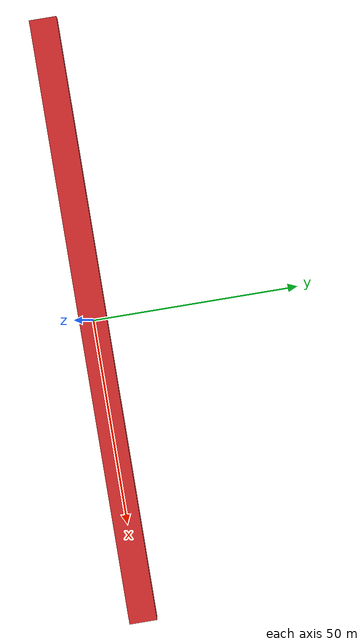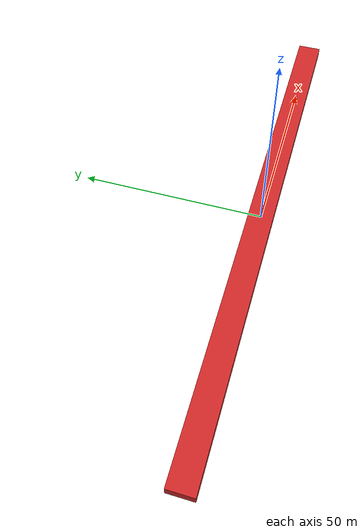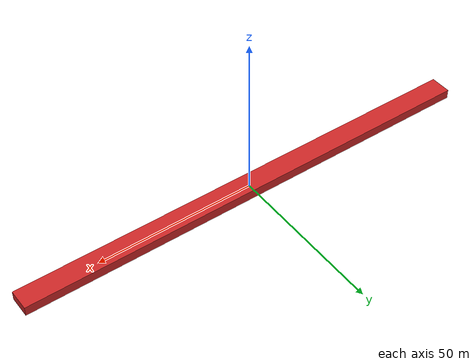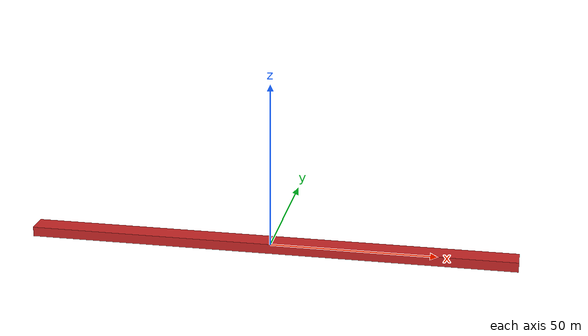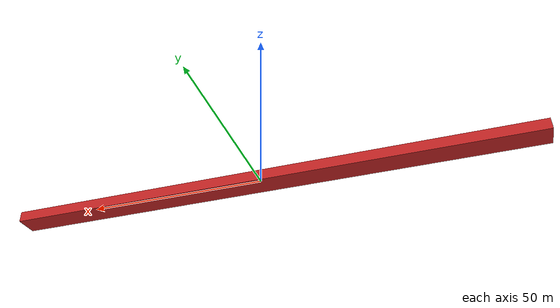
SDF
<?xml version='1.0'?>
<sdf version='1.7'>
  <model name='block2'>
    <link name='link_0'>
      <inertial>
        <mass>2902.28</mass>
        <inertia>
          <ixx>12891.6</ixx>
          <ixy>0</ixy>
          <ixz>0</ixz>
          <iyy>5.25698e+06</iyy>
          <iyz>0</iyz>
          <izz>5.26567e+06</izz>
        </inertia>
        <pose>0 0 0 0 -0 0</pose>
      </inertial>
      <pose>-3.1e-05 -3.1e-05 2e-06 0 -0 0</pose>
      <self_collide>0</self_collide>
      <enable_wind>0</enable_wind>
      <kinematic>0</kinematic>
      <gravity>1</gravity>
      <visual name='visual'>
        <pose>0 0 0 0 -0 0</pose>
        <geometry>
          <box>
            <size>147.402 6.67865 2.9493</size>
          </box>
        </geometry>
        <material>
          <lighting>1</lighting>
          <script>
            <uri>file://media/materials/scripts/gazebo.material</uri>
            <name>Gazebo/Red</name>
          </script>
          <shader type='pixel'>
            <normal_map>__default__</normal_map>
          </shader>
          <ambient>1 0 0 1</ambient>
          <diffuse>1 0 0 1</diffuse>
          <specular>0.1 0.1 0.1 1</specular>
          <emissive>0 0 0 1</emissive>
        </material>
        <transparency>0</transparency>
        <cast_shadows>1</cast_shadows>
      </visual>
      <collision name='collision'>
        <laser_retro>0</laser_retro>
        <max_contacts>10</max_contacts>
        <pose>0 0 0 0 -0 0</pose>
        <geometry>
          <box>
            <size>147.402 6.67865 2.9493</size>
          </box>
        </geometry>
        <surface>
          <friction>
            <ode>
              <mu>1</mu>
              <mu2>1</mu2>
              <fdir1>0 0 0</fdir1>
              <slip1>0</slip1>
              <slip2>0</slip2>
            </ode>
            <torsional>
              <coefficient>1</coefficient>
              <patch_radius>0</patch_radius>
              <surface_radius>0</surface_radius>
              <use_patch_radius>1</use_patch_radius>
              <ode>
                <slip>0</slip>
              </ode>
            </torsional>
          </friction>
          <bounce>
            <restitution_coefficient>0</restitution_coefficient>
            <threshold>1e+06</threshold>
          </bounce>
          <contact>
            <collide_without_contact>0</collide_without_contact>
            <collide_without_contact_bitmask>1</collide_without_contact_bitmask>
            <collide_bitmask>1</collide_bitmask>
            <ode>
              <soft_cfm>0</soft_cfm>
              <soft_erp>0.2</soft_erp>
              <kp>1e+13</kp>
              <kd>1</kd>
              <max_vel>0.01</max_vel>
              <min_depth>0</min_depth>
            </ode>
            <bullet>
              <split_impulse>1</split_impulse>
              <split_impulse_penetration_threshold>-0.01</split_impulse_penetration_threshold>
              <soft_cfm>0</soft_cfm>
              <soft_erp>0.2</soft_erp>
              <kp>1e+13</kp>
              <kd>1</kd>
            </bullet>
          </contact>
        </surface>
      </collision>
    </link>
    <static>0</static>
    <allow_auto_disable>1</allow_auto_disable>
  </model>
</sdf>
